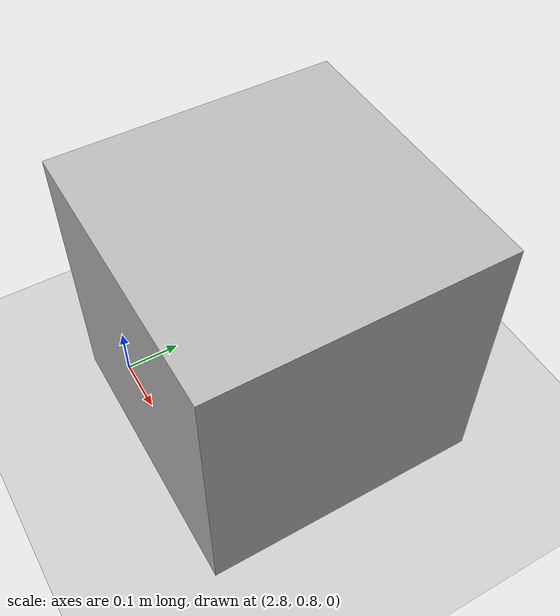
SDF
<?xml version="1.0" ?>
<sdf version="1.6">
  <world name="beach_flat">
    <include>
      <uri>model://sun</uri>
    </include>

    <include>
      <uri>model://ground_plane</uri>
    </include>

    <!-- Some obstacles -->
    <model name="box1">
      <pose>3 1 0.25 0 0 0</pose>
      <link name="link">
        <collision name="collision"><geometry><box><size>0.5 0.5 0.5</size></box></geometry></collision>
        <visual name="visual"><geometry><box><size>0.5 0.5 0.5</size></box></geometry></visual>
      </link>
    </model>

  </world>
</sdf>
